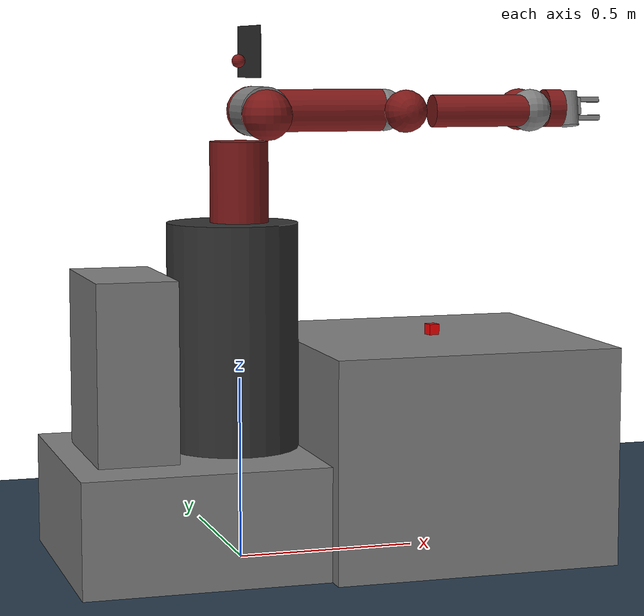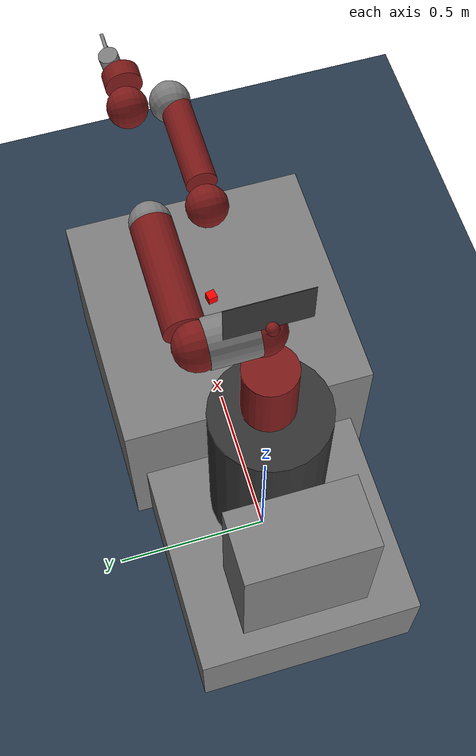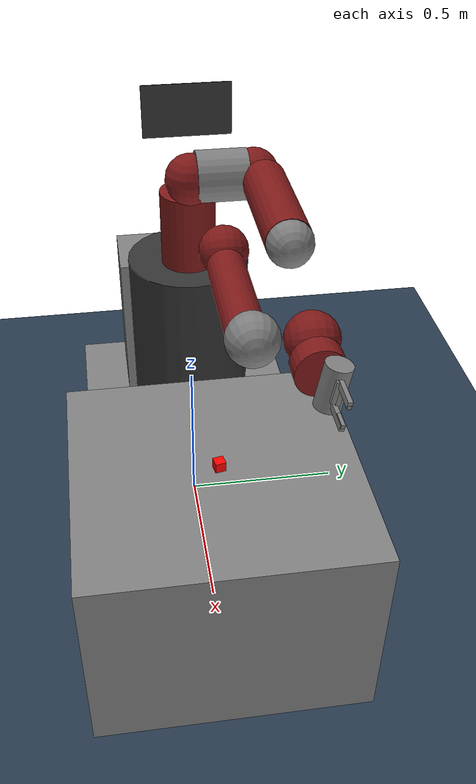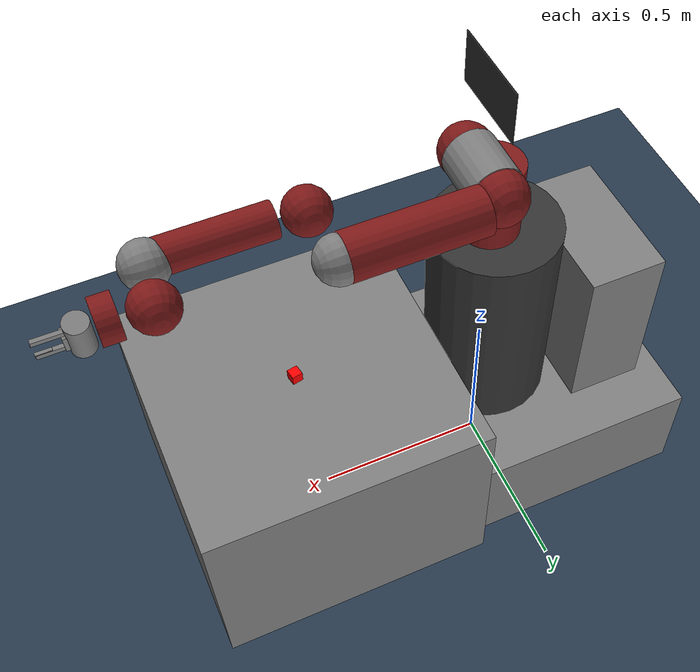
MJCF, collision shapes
<mujoco model="base">
  <compiler angle="radian" meshdir="meshes/" />
  <option cone="elliptic" impratio="20" />
  <size nconmax="5000" njmax="5000" />

  <asset>
  <texture builtin="gradient" height="256" rgb1=".9 .9 1." rgb2=".2 .3 .4" type="skybox" width="256" />
    <texture builtin="checker" height="512" name="texplane" rgb1=".2 .3 .4" rgb2=".1 0.15 0.2" type="2d" width="512" />
    <material name="floorplane" reflectance="0.5" texrepeat="1 1" texture="texplane" texuniform="true" />
  <mesh file="/root/robosuite/robosuite/models/assets/robots/sawyer/meshes/pedestal.stl" name="pedestal" />
    <mesh file="/root/robosuite/robosuite/models/assets/robots/sawyer/meshes/base.stl" name="base" />
    <mesh file="/root/robosuite/robosuite/models/assets/robots/sawyer/meshes/l0.stl" name="l0" />
    <mesh file="/root/robosuite/robosuite/models/assets/robots/sawyer/meshes/head.stl" name="head" />
    <mesh file="/root/robosuite/robosuite/models/assets/robots/sawyer/meshes/l1.stl" name="l1" />
    <mesh file="/root/robosuite/robosuite/models/assets/robots/sawyer/meshes/l2.stl" name="l2" />
    <mesh file="/root/robosuite/robosuite/models/assets/robots/sawyer/meshes/l3.stl" name="l3" />
    <mesh file="/root/robosuite/robosuite/models/assets/robots/sawyer/meshes/l4.stl" name="l4" />
    <mesh file="/root/robosuite/robosuite/models/assets/robots/sawyer/meshes/l5.stl" name="l5" />
    <mesh file="/root/robosuite/robosuite/models/assets/robots/sawyer/meshes/l6.stl" name="l6" />
  <mesh file="/root/robosuite/robosuite/models/assets/grippers/meshes/two_finger_gripper/electric_gripper_base.STL" name="electric_gripper_base" />
        <mesh file="/root/robosuite/robosuite/models/assets/grippers/meshes/two_finger_gripper/standard_narrow.STL" name="standard_narrow" />
        <mesh file="/root/robosuite/robosuite/models/assets/grippers/meshes/two_finger_gripper/half_round_tip.STL" name="half_round_tip" />
    </asset>

  <actuator>
  <velocity ctrllimited="true" ctrlrange="-1.74 1.74" joint="right_j0" kv="8.0" name="vel_right_j0" />
        <velocity ctrllimited="true" ctrlrange="-1.328 1.328" joint="right_j1" kv="7.0" name="vel_right_j1" />
        <velocity ctrllimited="true" ctrlrange="-1.957 1.957" joint="right_j2" kv="6.0" name="vel_right_j2" />
        <velocity ctrllimited="true" ctrlrange="-1.957 1.957" joint="right_j3" kv="4.0" name="vel_right_j3" />
        <velocity ctrllimited="true" ctrlrange="-3.485 3.485" joint="right_j4" kv="2.0" name="vel_right_j4" />
        <velocity ctrllimited="true" ctrlrange="-3.485 3.485" joint="right_j5" kv="0.5" name="vel_right_j5" />
        <velocity ctrllimited="true" ctrlrange="-4.545 4.545" joint="right_j6" kv="0.1" name="vel_right_j6" />
  <position ctrllimited="true" ctrlrange="-0.0115 0.020833" forcelimited="true" forcerange="-20 20" joint="r_gripper_r_finger_joint" kp="10000" name="gripper_r_gripper_r_finger_joint" />
        <position ctrllimited="true" ctrlrange="-0.020833 0.0115" forcelimited="true" forcerange="-20 20" joint="r_gripper_l_finger_joint" kp="10000" name="gripper_r_gripper_l_finger_joint" />
    </actuator>

  <worldbody>
  <geom condim="3" material="floorplane" name="floor" pos="0.56 0.0 0.0" size="3 3 .125" type="plane" />
    <body name="table" pos="0.56 0.0 0.3">
      <geom friction="1.0 0.005 0.0001" name="table_collision" pos="0 0 0" size="0.4 0.4 0.3" type="box" />
      <geom conaffinity="0" contype="0" group="1" name="table_visual" pos="0 0 0" size="0.4 0.4 0.3" type="box" />
      <site name="table_top" pos="0.0 0.0 0.3" rgba="0 0 0 0" size="0.001 0.001 0.001" />
    </body>

    <light castshadow="false" diffuse=".8 .8 .8" dir="0 -.15 -1" directional="false" pos="1.56 1.0 4.0" specular="0.3 0.3 0.3" />
    <light castshadow="false" diffuse=".8 .8 .8" dir="0 -.15 -1" directional="false" pos="-2.44 -3.0 4.0" specular="0.3 0.3 0.3" />

    <camera mode="fixed" name="frontview" pos="2.16 0.0 1.45" quat="0.56 0.43 0.43 0.56" />

    <camera mode="fixed" name="birdview" pos="0.36000000000000004 0.0 3.0" quat="0.7071 0 0 0.7071" />

    <camera mode="fixed" name="agentview" pos="1.06 0.0 1.35" quat="0.653 0.271 0.271 0.653" />
  <body name="base" pos="0.0 0.0 0.913">
      <inertial diaginertia="0 0 0" mass="0" pos="0 0 0" />
      <body name="controller_box" pos="0 0 0">
        <inertial diaginertia="1.71363 1.27988 0.809981" mass="46.64" pos="-0.325 0 -0.38" />
        <geom pos="-0.325 0 -0.38" size="0.11 0.2 0.265" type="box" />
      </body>
      <body name="pedestal_feet" pos="0 0 0">
        <inertial diaginertia="8.16095 9.59375 15.0785" mass="167.09" pos="-0.1225 0 -0.758" />
        <geom pos="-0.1225 0 -0.758" size="0.385 0.35 0.155" type="box" />
      </body>
      <body name="torso" pos="0 0 0">
        <inertial diaginertia="1e-08 1e-08 1e-08" mass="0.0001" pos="0 0 0" />
        <geom conaffinity="0" contype="0" group="1" rgba="0.2 0.2 0.2 1" size="0.05 0.05 0.05" type="box" />
      </body>
      <body name="pedestal" pos="0 0 0">
        <inertial diaginertia="6.0869 5.81635 4.20915" mass="60.864" pos="0 0 0" quat="0.659267 -0.259505 -0.260945 0.655692" />
        <geom conaffinity="0" contype="0" group="1" mesh="pedestal" pos="0.26 0.345 -0.91488" quat="0.5 0.5 -0.5 -0.5" rgba="0.2 0.2 0.2 1" type="mesh" />
        <geom pos="-0.02 0 -0.29" rgba="0.2 0.2 0.2 1" size="0.18 0.31" type="cylinder" />
      </body>
      <body name="right_arm_base_link" pos="0 0 0">
        <inertial diaginertia="0.00740351 0.00681776 0.00672942" mass="2.0687" pos="-0.0006241 -2.8025e-05 0.065404" quat="-0.209285 0.674441 0.227335 0.670558" />
        <geom conaffinity="0" contype="0" group="1" mesh="base" rgba="0.5 0.1 0.1 1" type="mesh" />
        <geom pos="0 0 0.12" rgba="0.5 0.1 0.1 1" size="0.08 0.12" type="cylinder" />
        <body name="right_l0" pos="0 0 0.08">
          <inertial diaginertia="0.0651588 0.0510944 0.0186218" mass="5.3213" pos="0.024366 0.010969 0.14363" quat="0.894823 0.00899958 -0.170275 0.412573" />
          <joint axis="0 0 1" limited="true" name="right_j0" pos="0 0 0" range="-3.0503 3.0503" />
          <geom conaffinity="0" contype="0" group="1" mesh="l0" rgba="0.5 0.1 0.1 1" type="mesh" />
          <geom pos="0.08 0 0.23" rgba="0.5 0.1 0.1 1" size="0.07" />
          <body name="head" pos="0 0 0.2965">
            <inertial diaginertia="0.0118334 0.00827089 0.00496574" mass="1.5795" pos="0.0053207 -2.6549e-05 0.1021" quat="0.999993 7.08405e-05 -0.00359857 -0.000626247" />
            <joint axis="0 0 1" limited="true" name="head_pan" pos="0 0 0" range="-5.0952 0.9064" />
            <geom conaffinity="0" contype="0" group="1" mesh="head" rgba="0.5 0.1 0.1 1" type="mesh" />
            <geom pos="0 0 0.08" rgba="0.5 0.1 0.1 1" size="0.018" />
            <body name="screen" pos="0.03 0 0.105" quat="0.5 0.5 0.5 0.5">
              <inertial diaginertia="1e-08 1e-08 1e-08" mass="0.0001" pos="0 0 0" />
              <geom conaffinity="0" contype="0" group="1" rgba="0.2 0.2 0.2 1" size="0.12 0.07 0.001" type="box" />
              <geom rgba="0.2 0.2 0.2 1" size="0.001" />
            </body>
            <body name="head_camera" pos="0.0228027 0 0.216572" quat="0.342813 -0.618449 0.618449 -0.342813">
              <inertial diaginertia="0 0 0" mass="0" pos="0.0228027 0 0.216572" quat="0.342813 -0.618449 0.618449 -0.342813" />
            </body>
          </body>
          <body name="right_torso_itb" pos="-0.055 0 0.22" quat="0.707107 0 -0.707107 0">
            <inertial diaginertia="1e-08 1e-08 1e-08" mass="0.0001" pos="0 0 0" />
          </body>
          <body name="right_l1" pos="0.081 0.05 0.237" quat="0.5 -0.5 0.5 0.5">
            <inertial diaginertia="0.0224339 0.0221624 0.0097097" mass="4.505" pos="-0.0030849 -0.026811 0.092521" quat="0.424888 0.891987 0.132364 -0.0794296" />
            <joint axis="0 0 1" limited="true" name="right_j1" pos="0 0 0" range="-3.8095 2.2736" />
            <geom conaffinity="0" contype="0" group="1" mesh="l1" rgba="0.5 0.1 0.1 1" type="mesh" />
            <geom pos="0 0 0.1225" rgba="0.5 0.1 0.1 1" size="0.07" />
            <body name="right_l2" pos="0 -0.14 0.1425" quat="0.707107 0.707107 0 0">
              <inertial diaginertia="0.0257928 0.025506 0.00292515" mass="1.745" pos="-0.00016044 -0.014967 0.13582" quat="0.707831 -0.0524761 0.0516007 0.702537" />
              <joint axis="0 0 1" limited="true" name="right_j2" pos="0 0 0" range="-3.0426 3.0426" />
              <geom conaffinity="0" contype="0" group="1" mesh="l2" rgba="0.5 0.1 0.1 1" type="mesh" />
              <geom pos="0 0 0.08" rgba="0.5 0.1 0.1 1" size="0.06 0.17" type="cylinder" />
              <body name="right_l3" pos="0 -0.042 0.26" quat="0.707107 -0.707107 0 0">
                <inertial diaginertia="0.0102404 0.0096997 0.00369622" mass="2.5097" pos="-0.0048135 -0.0281 -0.084154" quat="0.902999 0.385391 -0.0880901 0.168247" />
                <joint axis="0 0 1" limited="true" name="right_j3" pos="0 0 0" range="-3.0439 3.0439" />
                <geom conaffinity="0" contype="0" group="1" mesh="l3" rgba="0.5 0.1 0.1 1" type="mesh" />
                <geom pos="0 -0.01 -0.12" rgba="0.5 0.1 0.1 1" size="0.06" />
                <body name="right_l4" pos="0 -0.125 -0.1265" quat="0.707107 0.707107 0 0">
                  <inertial diaginertia="0.0136549 0.0135493 0.00127353" mass="1.1136" pos="-0.0018844 0.0069001 0.1341" quat="0.803612 0.031257 -0.0298334 0.593582" />
                  <joint axis="0 0 1" limited="true" name="right_j4" pos="0 0 0" range="-2.9761 2.9761" />
                  <geom conaffinity="0" contype="0" group="1" mesh="l4" rgba="0.5 0.1 0.1 1" type="mesh" />
                  <geom pos="0 0 0.11" rgba="0.5 0.1 0.1 1" size="0.045 0.15" type="cylinder" />
                  <body name="right_arm_itb" pos="-0.055 0 0.075" quat="0.707107 0 -0.707107 0">
                    <inertial diaginertia="1e-08 1e-08 1e-08" mass="0.0001" pos="0 0 0" />
                  </body>
                  <body name="right_l5" pos="0 0.031 0.275" quat="0.707107 -0.707107 0 0">
                    <inertial diaginertia="0.00474131 0.00422857 0.00190672" mass="1.5625" pos="0.0061133 -0.023697 0.076416" quat="0.404076 0.9135 0.0473125 0.00158335" />
                    <joint axis="0 0 1" damping="0.2" limited="true" name="right_j5" pos="0 0 0" range="-2.9761 2.9761" />
                    <geom conaffinity="0" contype="0" group="1" mesh="l5" rgba="0.5 0.1 0.1 1" type="mesh" />
                    <geom pos="0 0 0.1" rgba="0.5 0.1 0.1 1" size="0.06" />
                    <body name="right_hand_camera" pos="0.039552 -0.033 0.0695" quat="0.707107 0 0.707107 0">
                      <inertial diaginertia="0 0 0" mass="0" pos="0.039552 -0.033 0.0695" quat="0.707107 0 0.707107 0" />
                    </body>
                    <body name="right_wrist" pos="0 0 0.10541" quat="0.707107 0.707107 0 0">
                      <inertial diaginertia="0 0 0" mass="0" pos="0 0 0.10541" quat="0.707107 0.707107 0 0" />
                    </body>
                    <body name="right_l6" pos="0 -0.11 0.1053" quat="0.0616248 0.06163 -0.704416 0.704416">
                      <inertial diaginertia="0.000360258 0.000311068 0.000214974" mass="0.3292" pos="-8.0726e-06 0.0085838 -0.0049566" quat="0.479044 0.515636 -0.513069 0.491322" />
                      <joint axis="0 0 1" damping="0.1" limited="true" name="right_j6" pos="0 0 0" range="-4.7124 4.7124" />
                      <geom conaffinity="0" contype="0" group="1" mesh="l6" rgba="0.5 0.1 0.1 1" type="mesh" />
                      <geom pos="0 0.015 -0.01" rgba="0.5 0.1 0.1 1" size="0.055 0.025" type="cylinder" />
                      <body name="right_hand" pos="0 0 0.0245" quat="0.707105 0 0 0.707108">

                                          <inertial diaginertia="1e-08 1e-08 1e-08" mass="1e-08" pos="1e-08 1e-08 1e-08" quat="0.820473 0.339851 -0.17592 0.424708" />
        <geom size="1e-08 5e-09" type="cylinder" />
        <body name="right_gripper_base" pos="0 0 0.025">
            <inertial diaginertia="3e-08 2e-08 2e-08" mass="0.3" pos="0 0 0" quat="-0.5 0.5 0.5 0.5" />
            <geom conaffinity="0" contype="0" group="1" mesh="electric_gripper_base" quat="0 0 0.707107 0.707107" type="mesh" />
            <geom quat="0 0 0.707107 0.707107" size="0.029 0.05" type="cylinder" />
            <body name="right_gripper" pos="0 0 0.095">
                <inertial diaginertia="0 0 0" mass="0.0001" pos="0 0 0" />

                <site group="1" name="grip_site" pos="0 0 0" rgba="0 0 0 0" size="0.01 0.01 0.01" type="sphere" />

                <site group="1" name="grip_site_cylinder" pos="0 0 0" rgba="0 0 0 0" size="0.005 10" type="cylinder" />

                <camera fovy="75" mode="fixed" name="eye_in_hand" pos="0 0 0" quat="0 -1 1 0" />
            </body>

            <body name="r_gripper_l_finger" pos="0 0.01 0.02">
                <inertial diaginertia="0.01 0.01 0.01" mass="0.02" pos="0 0 0" quat="0 0 0 -1" />
                <joint axis="0 1 0" damping="100" limited="true" name="r_gripper_l_finger_joint" pos="0 0 0" range="-0.0115 0.020833" type="slide" />
                <geom conaffinity="0" contype="0" group="1" mesh="standard_narrow" name="r_gripper_l_finger" quat="0 0 0 -1" type="mesh" />
                <geom conaffinity="1" contype="0" friction="0 0 0" name="l_finger_g0" pos="0 0.01725 0.04" quat="0 0 0 -1" size="0.005 0.00675 0.0375" type="box" />
                <geom conaffinity="1" contype="0" friction="0 0 0" name="l_finger_g1" pos="-0.005 -0.003 0.0083" quat="0 0 0 -1" size="0.005 0.025 0.0085" type="box" />

                <body name="r_gripper_l_finger_tip" pos="0 0.01725 0.075">
                    <inertial diaginertia="0.01 0.01 0.01" mass="0.01" pos="0 0 0" quat="0 0 0 1" />
                    <geom conaffinity="0" contype="0" group="1" mesh="half_round_tip" quat="0 0 0 1" type="mesh" />
                    <geom conaffinity="1" contype="0" friction="0 0 0" name="l_fingertip_g0" pos="0 -0.0045 -0.015" quat="0 0 0 1" size="0.004 0.004 0.0185" type="box" />
                </body>
            </body>
            <body name="r_gripper_r_finger" pos="0 -0.01 0.02">
                <inertial diaginertia="0.01 0.01 0.01" mass="0.02" pos="0 0 0" />
                <joint axis="0 1 0" damping="100" limited="true" name="r_gripper_r_finger_joint" pos="0 0 0" range="-0.020833 0.0115" type="slide" />
                <geom conaffinity="0" contype="0" group="1" mesh="standard_narrow" name="r_gripper_r_finger" type="mesh" />
                <geom conaffinity="1" contype="0" friction="0 0 0" name="r_finger_g0" pos="0 -0.01725 0.04" size="0.005 0.00675 0.0375" type="box" />
                <geom conaffinity="1" contype="0" friction="0 0 0" name="r_finger_g1" pos="0.005 0.003 0.0083" size="0.005 0.025 0.0085" type="box" />
                <body name="r_gripper_r_finger_tip" pos="0 -0.01725 0.075">
                    <inertial diaginertia="0.01 0.01 0.01" mass="0.01" pos="0 0 0" />
                    <geom conaffinity="0" contype="0" group="1" mesh="half_round_tip" type="mesh" />
                    <geom conaffinity="1" contype="0" friction="0 0 0" name="r_fingertip_g0" pos="0 0.0045 -0.015" size="0.004 0.004 0.0185" type="box" />
                </body>
            </body>
        </body>
    </body>
                    </body>
                  </body>
                  <body name="right_l4_2" pos="0 0 0">
                    <inertial diaginertia="1e-08 1e-08 1e-08" mass="1e-08" pos="1e-08 1e-08 1e-08" quat="0.820473 0.339851 -0.17592 0.424708" />
                    <geom pos="0 0.01 0.26" size="0.06" />
                  </body>
                </body>
              </body>
              <body name="right_l2_2" pos="0 0 0">
                <inertial diaginertia="1e-08 1e-08 1e-08" mass="1e-08" pos="1e-08 1e-08 1e-08" quat="0.820473 0.339851 -0.17592 0.424708" />
                <geom pos="0 0 0.26" size="0.06" />
              </body>
            </body>
            <body name="right_l1_2" pos="0 0 0">
              <inertial diaginertia="1e-08 1e-08 1e-08" mass="1e-08" pos="1e-08 1e-08 1e-08" quat="0.820473 0.339851 -0.17592 0.424708" />
              <geom pos="0 0 0.035" size="0.07 0.07" type="cylinder" />
            </body>
          </body>
        </body>
      </body>
    </body>
  <body name="cube" pos="0.5644467831489044 0.009354874732493081 0.615" quat="-0.7695044043375173 0 0 0.6386415048406755"><geom density="500" friction="0.25 0.005 0.0001" group="1" name="cube" pos="0 0 0" rgba="1 0 0 1" size="0.015 0.015 0.015" type="box" /><site name="cube" pos="0 0 0" rgba="1 0 0 1" size="0.002 0.002 0.002" type="sphere" /><joint name="cube" type="free" /></body></worldbody>

  <equality>
  </equality>
<contact /><default /></mujoco>
